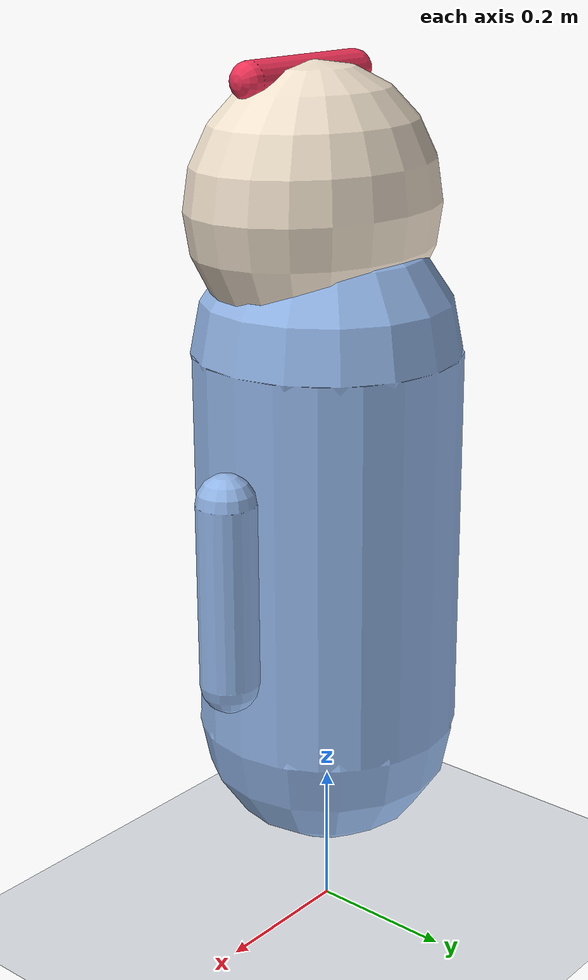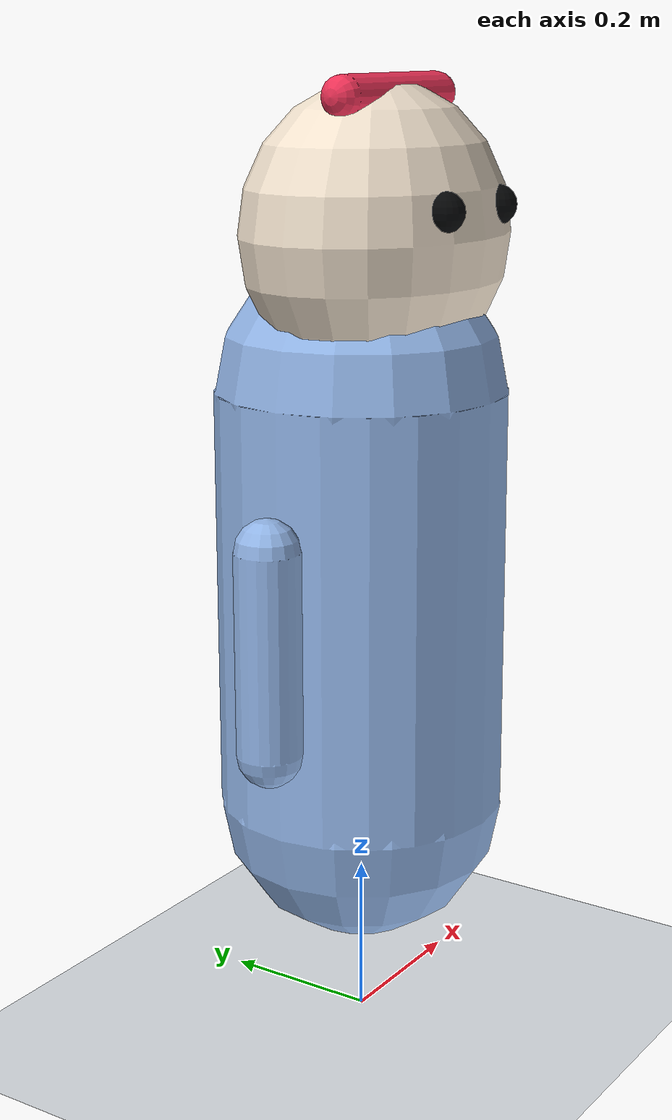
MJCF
<mujoco model="soulforge_example_avatar">
  <compiler angle="radian" autolimits="true"/>
  <option timestep="0.01" gravity="0 0 -9.81"/>
  <visual>
    <global offwidth="1280" offheight="960"/>
    <headlight diffuse="0.7 0.7 0.7" ambient="0.25 0.25 0.25" specular="0.2 0.2 0.2"/>
    <rgba haze="0.92 0.95 1 1"/>
  </visual>
  <asset>
    <material name="mat_body" rgba="0.58 0.72 0.92 1"/>
    <material name="mat_head" rgba="0.96 0.90 0.82 1"/>
    <material name="mat_eye" rgba="0.02 0.025 0.03 1"/>
    <material name="mat_accent" rgba="0.95 0.20 0.35 1"/>
    <material name="mat_floor" rgba="0.88 0.90 0.92 1"/>
  </asset>
  <worldbody>
    <light name="key" pos="0 -3 3" dir="0 1 -1" directional="true"/>
    <geom name="floor" type="plane" pos="0 0 0" size="3 3 0.02" material="mat_floor"/>

    <body name="root" pos="0 0 0.55">
      <joint name="body_yaw" type="hinge" axis="0 0 1" range="-0.35 0.35" damping="5.0" armature="0.04"/>
      <joint name="body_roll" type="hinge" axis="0 1 0" range="-0.26 0.26" damping="5.0" armature="0.04"/>
      <geom name="body_geom" type="capsule" fromto="0 0 -0.25 0 0 0.28" size="0.18" material="mat_body"/>

      <body name="left_arm" pos="-0.20 0 0.12">
        <inertial pos="0 0 -0.12" mass="0.08" diaginertia="0.0002 0.0002 0.0002"/>
        <joint name="left_arm_pitch" type="hinge" axis="1 0 0" range="-0.35 1.40" damping="3.0" armature="0.02"/>
        <geom type="capsule" fromto="0 0 0 0 0 -0.25" size="0.04" material="mat_body"/>
      </body>

      <body name="right_arm" pos="0.20 0 0.12">
        <inertial pos="0 0 -0.12" mass="0.08" diaginertia="0.0002 0.0002 0.0002"/>
        <joint name="right_arm_pitch" type="hinge" axis="1 0 0" range="-0.35 1.40" damping="3.0" armature="0.02"/>
        <geom type="capsule" fromto="0 0 0 0 0 -0.25" size="0.04" material="mat_body"/>
      </body>

      <body name="head_yaw_link" pos="0 0 0.32">
        <inertial pos="0 0 0" mass="0.02" diaginertia="0.00002 0.00002 0.00002"/>
        <joint name="head_yaw" type="hinge" axis="0 0 1" range="-0.70 0.70" damping="4.0" armature="0.02"/>
        <body name="head_pitch_link">
          <inertial pos="0 0 0" mass="0.02" diaginertia="0.00002 0.00002 0.00002"/>
          <joint name="head_pitch" type="hinge" axis="1 0 0" range="-0.45 0.45" damping="4.0" armature="0.02"/>
          <body name="head_roll_link">
            <inertial pos="0 0 0" mass="0.02" diaginertia="0.00002 0.00002 0.00002"/>
            <joint name="head_roll" type="hinge" axis="0 1 0" range="-0.30 0.30" damping="3.0" armature="0.02"/>
            <body name="head" pos="0 -0.02 0.15">
              <geom name="head_geom" type="ellipsoid" size="0.19 0.15 0.18" material="mat_head"/>
              <geom name="left_eye" type="sphere" pos="-0.060 -0.130 0.035" size="0.024" material="mat_eye"/>
              <geom name="right_eye" type="sphere" pos="0.060 -0.130 0.035" size="0.024" material="mat_eye"/>
              <geom name="hair_accent" type="capsule" fromto="-0.10 -0.02 0.16 0.10 -0.02 0.16" size="0.025" material="mat_accent"/>
            </body>
          </body>
        </body>
      </body>
    </body>
  </worldbody>
  <actuator>
    <position name="body_yaw_servo" joint="body_yaw" kp="8" ctrlrange="-0.35 0.35"/>
    <position name="body_roll_servo" joint="body_roll" kp="8" ctrlrange="-0.26 0.26"/>
    <position name="left_arm_pitch_servo" joint="left_arm_pitch" kp="8" ctrlrange="-0.35 1.40"/>
    <position name="right_arm_pitch_servo" joint="right_arm_pitch" kp="8" ctrlrange="-0.35 1.40"/>
    <position name="head_yaw_servo" joint="head_yaw" kp="12" ctrlrange="-0.70 0.70"/>
    <position name="head_pitch_servo" joint="head_pitch" kp="12" ctrlrange="-0.45 0.45"/>
    <position name="head_roll_servo" joint="head_roll" kp="8" ctrlrange="-0.30 0.30"/>
  </actuator>
</mujoco>
